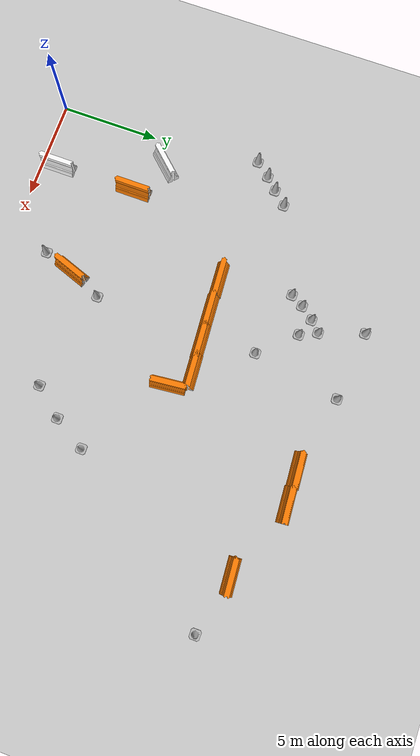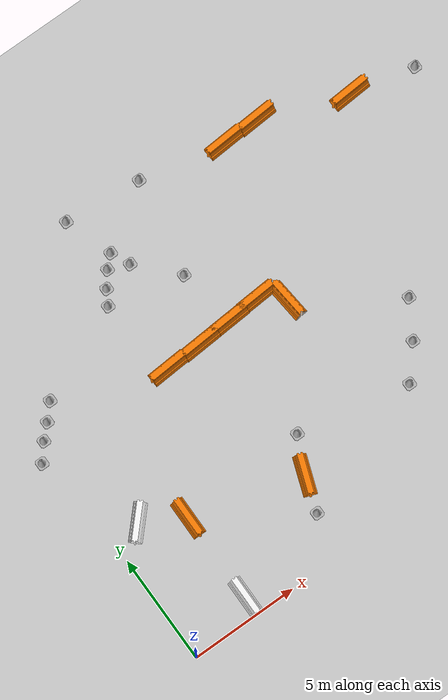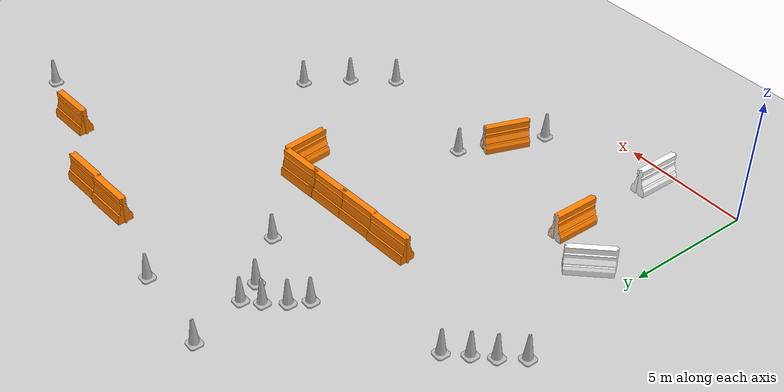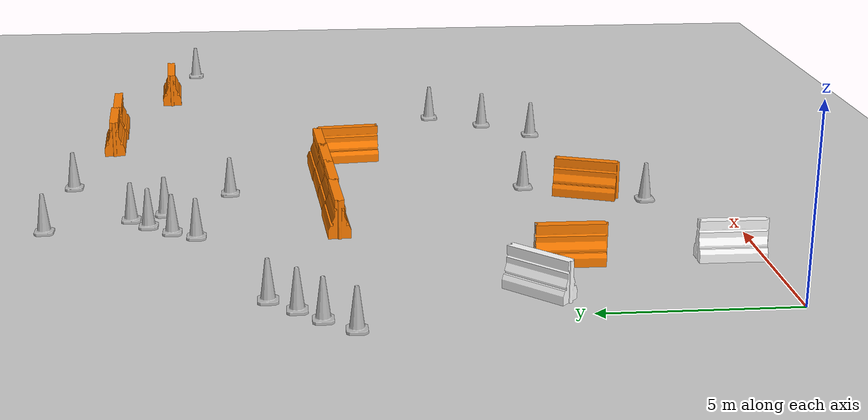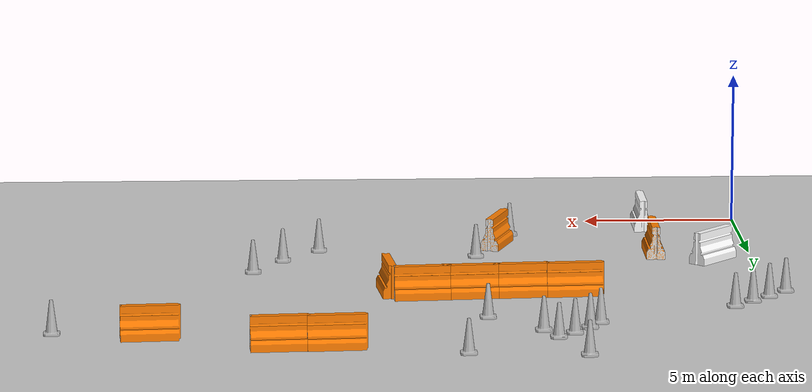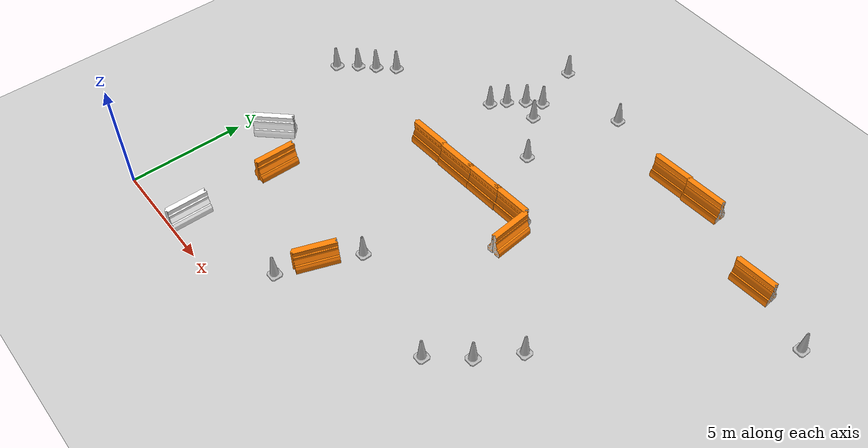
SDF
<sdf version="1.7">
 <world name="default">
  <light name="sun" type="directional">
   <pose>0 0 10 0 -0 0</pose>
   <diffuse>0.8 0.8 0.8 1</diffuse>
   <specular>0.2 0.2 0.2 1</specular>
   <attenuation>
    <range>1000</range>
    <constant>0.9</constant>
    <linear>0.01</linear>
    <quadratic>0.001</quadratic>
   </attenuation>
   <direction>-0.5 0.1 -0.9</direction>
   <spot><inner_angle>0</inner_angle><outer_angle>0</outer_angle><falloff>0</falloff></spot>
  </light>
  <model name="ground_plane">
   <static>1</static>
   <link name="link">
    <collision name="collision">
     <geometry><plane><normal>0 0 1</normal><size>100 100</size></plane></geometry>
     <surface><friction><ode><mu>100</mu><mu2>50</mu2></ode></friction></surface>
    </collision>
    <visual name="visual">
     <cast_shadows>0</cast_shadows>
     <geometry><plane><normal>0 0 1</normal><size>100 100</size></plane></geometry>
     <material>
      <script><uri>file://media/materials/scripts/gazebo.material</uri><name>Gazebo/Grey</name></script>
     </material>
    </visual>
    <velocity_decay><linear>0</linear><angular>0</angular></velocity_decay>
   </link>
  </model>
  <physics type="ode">
   <max_step_size>0.001</max_step_size>
   <real_time_factor>1</real_time_factor>
   <real_time_update_rate>1000</real_time_update_rate>
  </physics>
  <scene><ambient>0.4 0.4 0.4 1</ambient><background>0.7 0.7 0.7 1</background><shadows>1</shadows></scene>
  <spherical_coordinates>
   <surface_model>EARTH_WGS84</surface_model>
   <latitude_deg>0</latitude_deg>
   <longitude_deg>0</longitude_deg>
   <elevation>0</elevation>
   <heading_deg>0</heading_deg>
  </spherical_coordinates>
  <gravity>0 0 -9.8</gravity>
  <magnetic_field>6e-06 2.3e-05 -4.2e-05</magnetic_field>
  <atmosphere type="adiabatic"/>
  <model name="drc_practice_organge_jersey_barrier">
   <static>1</static>
   <link name="link">
    <visual name="visual">
     <geometry>
      <mesh><uri>model://drc_practice_orange_jersey_barrier/meshes/jersey_barrier.dae</uri></mesh>
     </geometry>
    </visual>
    <collision name="collision">
     <geometry>
      <mesh><uri>model://drc_practice_orange_jersey_barrier/meshes/jersey_barrier.dae</uri></mesh>
     </geometry>
    </collision>
   </link>
   <pose>3.14493 4.99571 0 0 -0 0</pose>
  </model>
  <model name="drc_practice_white_jersey_barrier">
   <static>1</static>
   <link name="link">
    <visual name="visual">
     <geometry>
      <mesh><uri>model://drc_practice_white_jersey_barrier/meshes/jersey_barrier.dae</uri></mesh>
     </geometry>
    </visual>
    <collision name="collision">
     <geometry>
      <mesh><uri>model://drc_practice_white_jersey_barrier/meshes/jersey_barrier.dae</uri></mesh>
     </geometry>
    </collision>
   </link>
   <pose>3.17275 0.878719 0 0 -0 0</pose>
  </model>
  <model name="drc_practice_white_jersey_barrier_0">
   <static>1</static>
   <link name="link">
    <visual name="visual">
     <geometry>
      <mesh><uri>model://drc_practice_white_jersey_barrier/meshes/jersey_barrier.dae</uri></mesh>
     </geometry>
    </visual>
    <collision name="collision">
     <geometry>
      <mesh><uri>model://drc_practice_white_jersey_barrier/meshes/jersey_barrier.dae</uri></mesh>
     </geometry>
    </collision>
   </link>
   <pose>1.3043 6.06966 0 0 0 -0.747413</pose>
  </model>
  <model name="drc_practice_organge_jersey_barrier_0">
   <static>1</static>
   <link name="link">
    <visual name="visual">
     <geometry>
      <mesh><uri>model://drc_practice_orange_jersey_barrier/meshes/jersey_barrier.dae</uri></mesh>
     </geometry>
    </visual>
    <collision name="collision">
     <geometry>
      <mesh><uri>model://drc_practice_orange_jersey_barrier/meshes/jersey_barrier.dae</uri></mesh>
     </geometry>
    </collision>
   </link>
   <pose>6.18949 10.703 0 0 0 -1.50082</pose>
  </model>
  <model name="drc_practice_organge_jersey_barrier_0_clone">
   <static>1</static>
   <link name="link">
    <visual name="visual">
     <geometry>
      <mesh><uri>model://drc_practice_orange_jersey_barrier/meshes/jersey_barrier.dae</uri></mesh>
     </geometry>
    </visual>
    <collision name="collision">
     <geometry>
      <mesh><uri>model://drc_practice_orange_jersey_barrier/meshes/jersey_barrier.dae</uri></mesh>
     </geometry>
    </collision>
   </link>
   <pose>7.90147 10.7763 0 0 0 -1.50082</pose>
  </model>
  <model name="drc_practice_organge_jersey_barrier_0_clone_0">
   <static>1</static>
   <link name="link">
    <visual name="visual">
     <geometry>
      <mesh><uri>model://drc_practice_orange_jersey_barrier/meshes/jersey_barrier.dae</uri></mesh>
     </geometry>
    </visual>
    <collision name="collision">
     <geometry>
      <mesh><uri>model://drc_practice_orange_jersey_barrier/meshes/jersey_barrier.dae</uri></mesh>
     </geometry>
    </collision>
   </link>
   <pose>9.48279 10.8838 0 0 0 -1.50082</pose>
  </model>
  <model name="drc_practice_organge_jersey_barrier_0_clone_1">
   <static>1</static>
   <link name="link">
    <visual name="visual">
     <geometry>
      <mesh><uri>model://drc_practice_orange_jersey_barrier/meshes/jersey_barrier.dae</uri></mesh>
     </geometry>
    </visual>
    <collision name="collision">
     <geometry>
      <mesh><uri>model://drc_practice_orange_jersey_barrier/meshes/jersey_barrier.dae</uri></mesh>
     </geometry>
    </collision>
   </link>
   <pose>11 11 0 0 0 -1.50082</pose>
  </model>
  <model name="drc_practice_organge_jersey_barrier_0_clone_2">
   <static>1</static>
   <link name="link">
    <visual name="visual">
     <geometry>
      <mesh><uri>model://drc_practice_orange_jersey_barrier/meshes/jersey_barrier.dae</uri></mesh>
     </geometry>
    </visual>
    <collision name="collision">
     <geometry>
      <mesh><uri>model://drc_practice_orange_jersey_barrier/meshes/jersey_barrier.dae</uri></mesh>
     </geometry>
    </collision>
   </link>
   <pose>12.0093 10.1192 0 0 0 -3.03916</pose>
  </model>
  <model name="drc_practice_organge_jersey_barrier_0_clone_3">
   <static>1</static>
   <link name="link">
    <visual name="visual">
     <geometry>
      <mesh><uri>model://drc_practice_orange_jersey_barrier/meshes/jersey_barrier.dae</uri></mesh>
     </geometry>
    </visual>
    <collision name="collision">
     <geometry>
      <mesh><uri>model://drc_practice_orange_jersey_barrier/meshes/jersey_barrier.dae</uri></mesh>
     </geometry>
    </collision>
   </link>
   <pose>8.21868 3.59918 0 0 0 -0.340811</pose>
  </model>
  <model name="Construction Cone">
   <link name="link">
    <collision name="collision">
     <geometry>
      <mesh><scale>10 10 10</scale><uri>model://construction_cone/meshes/construction_cone.dae</uri></mesh>
     </geometry>
    </collision>
    <visual name="visual">
     <geometry>
      <mesh><scale>10 10 10</scale><uri>model://construction_cone/meshes/construction_cone.dae</uri></mesh>
     </geometry>
    </visual>
    <inertial>
     <inertia><ixx>1</ixx><ixy>0</ixy><ixz>0</ixz><iyy>1</iyy><iyz>0</iyz><izz>1</izz></inertia>
     <mass>1</mass>
    </inertial>
   </link>
   <pose>-0.524817 10.4964 -0 0 -0 0</pose>
  </model>
  <model name="Construction Cone_clone">
   <link name="link">
    <collision name="collision">
     <geometry>
      <mesh><scale>10 10 10</scale><uri>model://construction_cone/meshes/construction_cone.dae</uri></mesh>
     </geometry>
    </collision>
    <visual name="visual">
     <geometry>
      <mesh><scale>10 10 10</scale><uri>model://construction_cone/meshes/construction_cone.dae</uri></mesh>
     </geometry>
    </visual>
    <inertial>
     <inertia><ixx>1</ixx><ixy>0</ixy><ixz>0</ixz><iyy>1</iyy><iyz>0</iyz><izz>1</izz></inertia>
     <mass>1</mass>
    </inertial>
   </link>
   <pose>0.085626 11.2349 -0 -0 -0 -0</pose>
  </model>
  <model name="Construction Cone_clone_0">
   <link name="link">
    <collision name="collision">
     <geometry>
      <mesh><scale>10 10 10</scale><uri>model://construction_cone/meshes/construction_cone.dae</uri></mesh>
     </geometry>
    </collision>
    <visual name="visual">
     <geometry>
      <mesh><scale>10 10 10</scale><uri>model://construction_cone/meshes/construction_cone.dae</uri></mesh>
     </geometry>
    </visual>
    <inertial>
     <inertia><ixx>1</ixx><ixy>0</ixy><ixz>0</ixz><iyy>1</iyy><iyz>0</iyz><izz>1</izz></inertia>
     <mass>1</mass>
    </inertial>
   </link>
   <pose>0.672547 11.8191 -1e-05 -0 -0 -0</pose>
  </model>
  <model name="Construction Cone_clone_1">
   <link name="link">
    <collision name="collision">
     <geometry>
      <mesh><scale>10 10 10</scale><uri>model://construction_cone/meshes/construction_cone.dae</uri></mesh>
     </geometry>
    </collision>
    <visual name="visual">
     <geometry>
      <mesh><scale>10 10 10</scale><uri>model://construction_cone/meshes/construction_cone.dae</uri></mesh>
     </geometry>
    </visual>
    <inertial>
     <inertia><ixx>1</ixx><ixy>0</ixy><ixz>0</ixz><iyy>1</iyy><iyz>0</iyz><izz>1</izz></inertia>
     <mass>1</mass>
    </inertial>
   </link>
   <pose>1.29896 12.495 -4e-06 4e-06 -1e-06 0</pose>
  </model>
  <model name="Construction Cone_clone_2">
   <link name="link">
    <collision name="collision">
     <geometry>
      <mesh><scale>10 10 10</scale><uri>model://construction_cone/meshes/construction_cone.dae</uri></mesh>
     </geometry>
    </collision>
    <visual name="visual">
     <geometry>
      <mesh><scale>10 10 10</scale><uri>model://construction_cone/meshes/construction_cone.dae</uri></mesh>
     </geometry>
    </visual>
    <inertial>
     <inertia><ixx>1</ixx><ixy>0</ixy><ixz>0</ixz><iyy>1</iyy><iyz>0</iyz><izz>1</izz></inertia>
     <mass>1</mass>
    </inertial>
   </link>
   <pose>7.71148 2.00416 -0 0 -0 0</pose>
  </model>
  <model name="Construction Cone_clone_3">
   <link name="link">
    <collision name="collision">
     <geometry>
      <mesh><scale>10 10 10</scale><uri>model://construction_cone/meshes/construction_cone.dae</uri></mesh>
     </geometry>
    </collision>
    <visual name="visual">
     <geometry>
      <mesh><scale>10 10 10</scale><uri>model://construction_cone/meshes/construction_cone.dae</uri></mesh>
     </geometry>
    </visual>
    <inertial>
     <inertia><ixx>1</ixx><ixy>0</ixy><ixz>0</ixz><iyy>1</iyy><iyz>0</iyz><izz>1</izz></inertia>
     <mass>1</mass>
    </inertial>
   </link>
   <pose>9.00777 5.24403 -8e-06 1e-06 -0 0</pose>
  </model>
  <model name="Construction Cone_clone_4">
   <link name="link">
    <collision name="collision">
     <geometry>
      <mesh><scale>10 10 10</scale><uri>model://construction_cone/meshes/construction_cone.dae</uri></mesh>
     </geometry>
    </collision>
    <visual name="visual">
     <geometry>
      <mesh><scale>10 10 10</scale><uri>model://construction_cone/meshes/construction_cone.dae</uri></mesh>
     </geometry>
    </visual>
    <inertial>
     <inertia><ixx>1</ixx><ixy>0</ixy><ixz>0</ixz><iyy>1</iyy><iyz>0</iyz><izz>1</izz></inertia>
     <mass>1</mass>
    </inertial>
   </link>
   <pose>6.31211 18.403 -0 0 -0 0</pose>
  </model>
  <model name="Construction Cone_clone_5">
   <link name="link">
    <collision name="collision">
     <geometry>
      <mesh><scale>10 10 10</scale><uri>model://construction_cone/meshes/construction_cone.dae</uri></mesh>
     </geometry>
    </collision>
    <visual name="visual">
     <geometry>
      <mesh><scale>10 10 10</scale><uri>model://construction_cone/meshes/construction_cone.dae</uri></mesh>
     </geometry>
    </visual>
    <inertial>
     <inertia><ixx>1</ixx><ixy>0</ixy><ixz>0</ixz><iyy>1</iyy><iyz>0</iyz><izz>1</izz></inertia>
     <mass>1</mass>
    </inertial>
   </link>
   <pose>7.0713 16.1963 -3e-06 -3e-06 -1e-06 -0</pose>
  </model>
  <model name="Construction Cone_clone_6">
   <link name="link">
    <collision name="collision">
     <geometry>
      <mesh><scale>10 10 10</scale><uri>model://construction_cone/meshes/construction_cone.dae</uri></mesh>
     </geometry>
    </collision>
    <visual name="visual">
     <geometry>
      <mesh><scale>10 10 10</scale><uri>model://construction_cone/meshes/construction_cone.dae</uri></mesh>
     </geometry>
    </visual>
    <inertial>
     <inertia><ixx>1</ixx><ixy>0</ixy><ixz>0</ixz><iyy>1</iyy><iyz>0</iyz><izz>1</izz></inertia>
     <mass>1</mass>
    </inertial>
   </link>
   <pose>9.06841 13.5987 0 -0 -0 -0</pose>
  </model>
  <model name="drc_practice_organge_jersey_barrier_0_clone_2_clone">
   <static>1</static>
   <link name="link">
    <visual name="visual">
     <geometry>
      <mesh><uri>model://drc_practice_orange_jersey_barrier/meshes/jersey_barrier.dae</uri></mesh>
     </geometry>
    </visual>
    <collision name="collision">
     <geometry>
      <mesh><uri>model://drc_practice_orange_jersey_barrier/meshes/jersey_barrier.dae</uri></mesh>
     </geometry>
    </collision>
   </link>
   <pose>15.5067 17.3334 0 0 0 -1.50082</pose>
  </model>
  <model name="drc_practice_organge_jersey_barrier_0_clone_2_clone_0">
   <static>1</static>
   <link name="link">
    <visual name="visual">
     <geometry>
      <mesh><uri>model://drc_practice_orange_jersey_barrier/meshes/jersey_barrier.dae</uri></mesh>
     </geometry>
    </visual>
    <collision name="collision">
     <geometry>
      <mesh><uri>model://drc_practice_orange_jersey_barrier/meshes/jersey_barrier.dae</uri></mesh>
     </geometry>
    </collision>
   </link>
   <pose>13.8091 17.2752 0 0 0 -1.50082</pose>
  </model>
  <model name="drc_practice_organge_jersey_barrier_0_clone_2_clone_1">
   <static>1</static>
   <link name="link">
    <visual name="visual">
     <geometry>
      <mesh><uri>model://drc_practice_orange_jersey_barrier/meshes/jersey_barrier.dae</uri></mesh>
     </geometry>
    </visual>
    <collision name="collision">
     <geometry>
      <mesh><uri>model://drc_practice_orange_jersey_barrier/meshes/jersey_barrier.dae</uri></mesh>
     </geometry>
    </collision>
   </link>
   <pose>19.4224 15.8987 0 0 0 -1.50082</pose>
  </model>
  <model name="Construction Cone_clone_6_clone">
   <link name="link">
    <collision name="collision">
     <geometry>
      <mesh><scale>10 10 10</scale><uri>model://construction_cone/meshes/construction_cone.dae</uri></mesh>
     </geometry>
    </collision>
    <visual name="visual">
     <geometry>
      <mesh><scale>10 10 10</scale><uri>model://construction_cone/meshes/construction_cone.dae</uri></mesh>
     </geometry>
    </visual>
    <inertial>
     <inertia><ixx>1</ixx><ixy>0</ixy><ixz>0</ixz><iyy>1</iyy><iyz>0</iyz><izz>1</izz></inertia>
     <mass>1</mass>
    </inertial>
   </link>
   <pose>22.3955 15.2246 -1e-05 0 -0 0</pose>
  </model>
  <model name="Construction Cone_clone_6_clone_0">
   <link name="link">
    <collision name="collision">
     <geometry>
      <mesh><scale>10 10 10</scale><uri>model://construction_cone/meshes/construction_cone.dae</uri></mesh>
     </geometry>
    </collision>
    <visual name="visual">
     <geometry>
      <mesh><scale>10 10 10</scale><uri>model://construction_cone/meshes/construction_cone.dae</uri></mesh>
     </geometry>
    </visual>
    <inertial>
     <inertia><ixx>1</ixx><ixy>0</ixy><ixz>0</ixz><iyy>1</iyy><iyz>0</iyz><izz>1</izz></inertia>
     <mass>1</mass>
    </inertial>
   </link>
   <pose>16.2989 7.24442 -0 0 -0 0</pose>
  </model>
  <model name="Construction Cone_clone_6_clone_1">
   <link name="link">
    <collision name="collision">
     <geometry>
      <mesh><scale>10 10 10</scale><uri>model://construction_cone/meshes/construction_cone.dae</uri></mesh>
     </geometry>
    </collision>
    <visual name="visual">
     <geometry>
      <mesh><scale>10 10 10</scale><uri>model://construction_cone/meshes/construction_cone.dae</uri></mesh>
     </geometry>
    </visual>
    <inertial>
     <inertia><ixx>1</ixx><ixy>0</ixy><ixz>0</ixz><iyy>1</iyy><iyz>0</iyz><izz>1</izz></inertia>
     <mass>1</mass>
    </inertial>
   </link>
   <pose>15.3285 5.6214 -0 0 -0 0</pose>
  </model>
  <model name="Construction Cone_clone_6_clone_2">
   <link name="link">
    <collision name="collision">
     <geometry>
      <mesh><scale>10 10 10</scale><uri>model://construction_cone/meshes/construction_cone.dae</uri></mesh>
     </geometry>
    </collision>
    <visual name="visual">
     <geometry>
      <mesh><scale>10 10 10</scale><uri>model://construction_cone/meshes/construction_cone.dae</uri></mesh>
     </geometry>
    </visual>
    <inertial>
     <inertia><ixx>1</ixx><ixy>0</ixy><ixz>0</ixz><iyy>1</iyy><iyz>0</iyz><izz>1</izz></inertia>
     <mass>1</mass>
    </inertial>
   </link>
   <pose>14.1319 4.21098 -0 0 -0 0</pose>
  </model>
  <model name="Construction Cone_clone_6_clone_3">
   <link name="link">
    <collision name="collision">
     <geometry>
      <mesh><scale>10 10 10</scale><uri>model://construction_cone/meshes/construction_cone.dae</uri></mesh>
     </geometry>
    </collision>
    <visual name="visual">
     <geometry>
      <mesh><scale>10 10 10</scale><uri>model://construction_cone/meshes/construction_cone.dae</uri></mesh>
     </geometry>
    </visual>
    <inertial>
     <inertia><ixx>1</ixx><ixy>0</ixy><ixz>0</ixz><iyy>1</iyy><iyz>0</iyz><izz>1</izz></inertia>
     <mass>1</mass>
    </inertial>
   </link>
   <pose>7.46913 15.3231 -0 0 -0 0</pose>
  </model>
  <model name="Construction Cone_clone_6_clone_4">
   <link name="link">
    <collision name="collision">
     <geometry>
      <mesh><scale>10 10 10</scale><uri>model://construction_cone/meshes/construction_cone.dae</uri></mesh>
     </geometry>
    </collision>
    <visual name="visual">
     <geometry>
      <mesh><scale>10 10 10</scale><uri>model://construction_cone/meshes/construction_cone.dae</uri></mesh>
     </geometry>
    </visual>
    <inertial>
     <inertia><ixx>1</ixx><ixy>0</ixy><ixz>0</ixz><iyy>1</iyy><iyz>0</iyz><izz>1</izz></inertia>
     <mass>1</mass>
    </inertial>
   </link>
   <pose>6.54688 15.6908 -3e-06 -3e-06 -1e-06 -0</pose>
  </model>
  <model name="Construction Cone_clone_6_clone_5">
   <link name="link">
    <collision name="collision">
     <geometry>
      <mesh><scale>10 10 10</scale><uri>model://construction_cone/meshes/construction_cone.dae</uri></mesh>
     </geometry>
    </collision>
    <visual name="visual">
     <geometry>
      <mesh><scale>10 10 10</scale><uri>model://construction_cone/meshes/construction_cone.dae</uri></mesh>
     </geometry>
    </visual>
    <inertial>
     <inertia><ixx>1</ixx><ixy>0</ixy><ixz>0</ixz><iyy>1</iyy><iyz>0</iyz><izz>1</izz></inertia>
     <mass>1</mass>
    </inertial>
   </link>
   <pose>6.03191 15.0307 -0 0 -0 0</pose>
  </model>
  <model name="Construction Cone_clone_6_clone_6">
   <link name="link">
    <collision name="collision">
     <geometry>
      <mesh><scale>10 10 10</scale><uri>model://construction_cone/meshes/construction_cone.dae</uri></mesh>
     </geometry>
    </collision>
    <visual name="visual">
     <geometry>
      <mesh><scale>10 10 10</scale><uri>model://construction_cone/meshes/construction_cone.dae</uri></mesh>
     </geometry>
    </visual>
    <inertial>
     <inertia><ixx>1</ixx><ixy>0</ixy><ixz>0</ixz><iyy>1</iyy><iyz>0</iyz><izz>1</izz></inertia>
     <mass>1</mass>
    </inertial>
   </link>
   <pose>5.65693 14.3808 -1e-05 -1e-06 0 0</pose>
  </model>
  <model name="Construction Cone_clone_6_clone_7">
   <link name="link">
    <collision name="collision">
     <geometry>
      <mesh><scale>10 10 10</scale><uri>model://construction_cone/meshes/construction_cone.dae</uri></mesh>
     </geometry>
    </collision>
    <visual name="visual">
     <geometry>
      <mesh><scale>10 10 10</scale><uri>model://construction_cone/meshes/construction_cone.dae</uri></mesh>
     </geometry>
    </visual>
    <inertial>
     <inertia><ixx>1</ixx><ixy>0</ixy><ixz>0</ixz><iyy>1</iyy><iyz>0</iyz><izz>1</izz></inertia>
     <mass>1</mass>
    </inertial>
   </link>
   <pose>9.89044 18.067 -0 0 -1e-06 0</pose>
  </model>
 </world>
</sdf>
